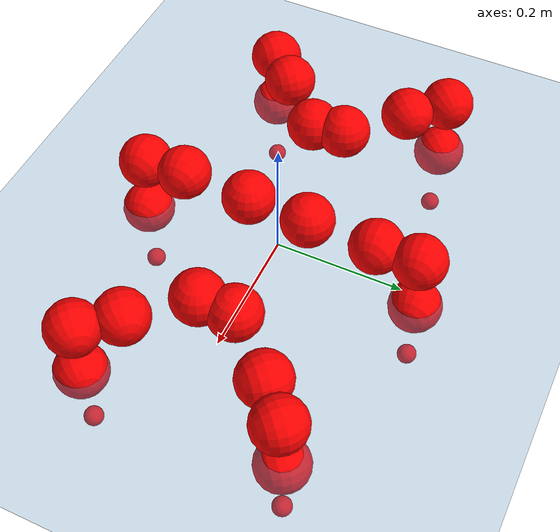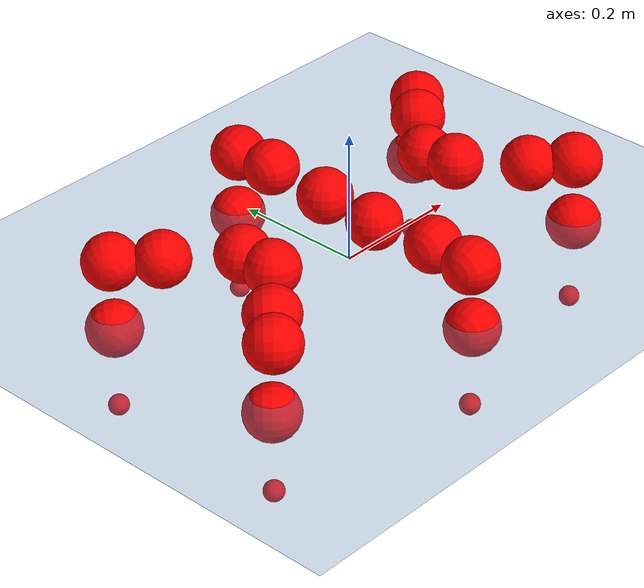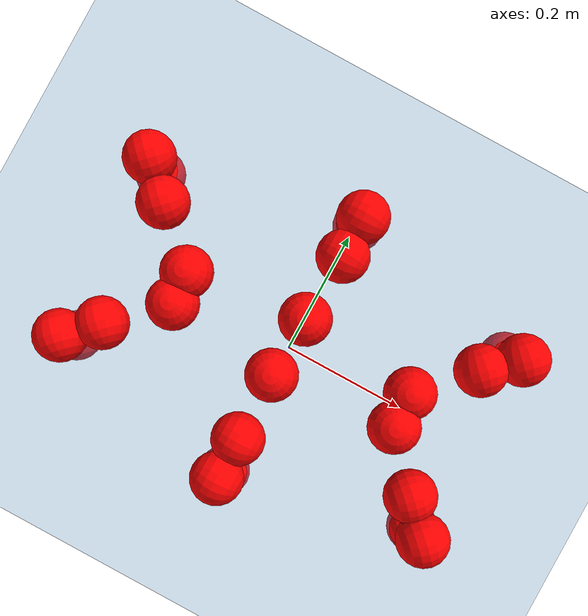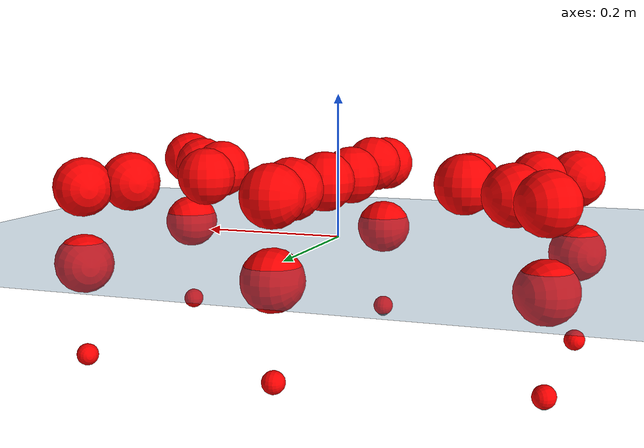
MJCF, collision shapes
<mujoco model="Golem">
  <compiler angle="radian" assetdir="assets" balanceinertia="true" inertiafromgeom="false"/>

  <option timestep="0.005" density="1.2" viscosity="2e-05"/>

  <size nkey="1"/>

  <visual>
    <quality shadowsize="8192"/>
    <map shadowclip="0.5"/>
  </visual>

  <default>
    <default class="/">
      <joint armature="0.01" damping="0.01" frictionloss="0.01"/>
      <geom contype="0" conaffinity="0" group="1" solref="-1000 -80"/>
      <site size="0.01 0.005 0.005" group="5"/>
      <general forcelimited="true" biastype="affine" gainprm="25" biasprm="0 -25 -0.5"/>
      <default class="visual">
        <geom type="mesh" group="2"/>
      </default>
      <default class="collision">
        <geom group="3"/>
      </default>
      <default class="foot">
        <geom size="0.01 0 0" condim="6" group="4" priority="1" solimp="0.015 1 0.01"/>
      </default>
      <default class="reward_collision_sphere">
        <geom group="5" rgba="1 0 0 1"/>
      </default>
    </default>
  </default>

  <asset>
    <texture type="skybox" colorspace="auto" name="//unnamed_texture_0" builtin="gradient" rgb1="0.95 0.95 0.95" rgb2="0.95 0.95 0.95" width="100" height="600"/>
    <texture type="2d" colorspace="auto" name="texplane" builtin="checker" rgb1="0.345 0.575 0.748" rgb2="0.345 0.575 0.748" markrgb="1 1 1" width="512" height="512"/>
    <material name="MatPlane" class="/" texture="texplane" texuniform="true" texrepeat="2 2" specular="0.9"/>
    <mesh name="body" class="/" file="body.stl" scale="0.001 0.001 0.001"/>
    <mesh name="coxa" class="/" file="coxa.stl" scale="0.001 0.001 0.001"/>
    <mesh name="femur" class="/" file="femur.stl" scale="0.001 0.001 0.001"/>
    <mesh name="tibia" class="/" file="tibia.stl" scale="0.001 0.001 0.001"/>
    <mesh name="tarsus" class="/" file="tarsus.stl" scale="0.001 0.001 0.001"/>
  </asset>

  <worldbody>
    <geom name="floor" class="/" size="100 100 0.125" type="plane" group="0" material="MatPlane"/>
    <light name="toplight_shadow" class="/" pos="0 0 5" dir="0.0990148 0.0990148 -0.990148" type="directional" ambient="0.04 0.04 0.04" diffuse="0.55 0.55 0.55" specular="0.12 0.12 0.12"/>
    <light name="toplight_fill" class="/" pos="0 0 5" dir="0.0990148 0.0990148 -0.990148" type="directional" castshadow="false" ambient="0.04 0.04 0.04" diffuse="0.3 0.3 0.3" specular="0.08 0.08 0.08"/>
    <body name="trunk" pos="0.00249023 -0.000413961 0.00369841" quat="1 -0.0004141 -0.000321953 2.13857e-05">
      <inertial pos="-3.71404e-05 -0.00195245 0.00173713" quat="0.999972 -0.00237531 -0.00576053 -0.004037" mass="3.92366" diaginertia="0.0243992 0.000969527 0.0287705"/>
      <joint name="//unnamed_joint_0" type="free"/>
      <geom name="//unnamed_geom_1" class="/" pos="0 0 0.0791872" quat="1 0 0 0" type="mesh" rgba="0.9 0.9 0.9 1" mesh="body"/>
      <site name="imu" class="/" pos="0.15045 0.00189706 0.111337" size="0.0102479"/>
      <camera name="track" class="/" pos="0 -1.2645 0" quat="0.707107 0.707107 0 0" mode="trackcom"/>
      <camera name="ego_camera" class="/" pos="0.156626 0 0.12373" quat="-0.5 -0.5 0.5 0.5"/>
      <body name="coxa_RR" pos="-0.210866 -0.0507639 0.0781714" quat="0.380672 -0.00100647 0.00119888 -0.924709">
        <inertial pos="0.00471946 0.000147092 0.00195532" quat="0.999914 -0.0120029 -0.00235142 0.00477491" mass="0.218067" diaginertia="0.0255984 0.00102976 0.0305975"/>
        <joint name="coxa_joint_RR" class="/" pos="0 0 0" axis="-0.0045197 -0.00486358 -0.999978" stiffness="0.000287586" range="-3.16039 3.18947" armature="0.00922268" damping="0" frictionloss="0.0088822"/>
        <geom name="//unnamed_geom_2" class="/" type="mesh" rgba="0.2 0.2 0.2 1" mesh="coxa"/>
        <geom name="//unnamed_geom_3" class="reward_collision_sphere" size="0.0409915" pos="-0.0361445 0 0"/>
        <body name="femur_RR" pos="0.0731604 -0.00154992 -0.00158595" quat="0.500187 -0.499919 0.499787 0.500107">
          <inertial pos="-0.00180106 -0.00158165 -0.00359386" quat="0.999999 -0.00115837 0.000676283 -0.000711115" mass="0.217919" diaginertia="0.0254679 0.00101905 0.0309576"/>
          <joint name="femur_joint_RR" class="/" pos="0 0 0" axis="-0.00876059 0.00997091 -0.999912" range="-3.09403 3.1524" armature="0.00980885" damping="0.019636" frictionloss="0.00913178"/>
          <geom name="//unnamed_geom_4" class="/" type="mesh" rgba="0.9 0.9 0.9 1" mesh="femur"/>
          <geom name="//unnamed_geom_5" class="reward_collision_sphere" size="0.0409915"/>
          <body name="tibia_RR" pos="0.00192659 -0.0663563 0.000230089" quat="2.02276e-05 1 3.46214e-05 -6.73696e-05">
            <inertial pos="-0.00124603 -0.00283328 0.00366913" quat="0.999901 0.0136291 -0.000310316 0.003457" mass="0.208507" diaginertia="0.0258702 0.00100382 0.0295975"/>
            <joint name="tibia_joint_RR" class="/" pos="0 0 0" axis="0.00210267 -0.00726954 0.999971" range="-3.1354 3.16047" armature="0.0100745" damping="0.013326" frictionloss="0.0114008"/>
            <geom name="//unnamed_geom_6" class="/" type="mesh" rgba="0.2 0.2 0.2 1" mesh="tibia"/>
            <geom name="//unnamed_geom_7" class="reward_collision_sphere" size="0.0409915"/>
            <body name="tarsus_RR" pos="0.106873 0.00326033 0.00307573" quat="0.999999 -0.000581261 0.00130981 0.000733012">
              <inertial pos="0.0745841 0.0045469 0.00168116" quat="0.500367 0.494767 0.510097 0.49461" mass="0.225509" diaginertia="0.0252164 0.00098679 0.0292176"/>
              <joint name="tarsus_joint_RR" class="/" pos="0 0 0" axis="0.00119486 0.00273794 0.999996" range="-3.14533 3.10017" armature="0.0099172" damping="0.0148359" frictionloss="0.00899408"/>
              <geom name="//unnamed_geom_8" class="/" type="mesh" rgba="0.9 0.9 0.9 1" mesh="tarsus"/>
              <geom name="foot_1" class="foot" size="0.00939083" pos="0.13494 0 0" quat="0 -0.707107 0 0.707107"/>
              <geom name="//unnamed_geom_10" class="reward_collision_sphere" size="0.0409915"/>
              <geom name="//unnamed_geom_11" class="reward_collision_sphere" size="0.0153718" pos="0.129518 0 0"/>
              <site name="foot_1" class="foot" pos="0.13494 0 0" quat="0 -0.707107 0 0.707107" size="0.0102479"/>
            </body>
          </body>
        </body>
      </body>
      <body name="coxa_RM" pos="-0.00459364 -0.0843785 0.0795125" quat="0.70637 -0.000133068 0.00035088 -0.707842">
        <inertial pos="-0.000528939 6.50693e-05 0.00546428" quat="0.999936 0.00177385 0.0103559 -0.00430884" mass="0.220331" diaginertia="0.0262739 0.00106381 0.0300982"/>
        <joint name="coxa_joint_RM" class="/" pos="0 0 0" axis="0.00630378 0.00256832 -0.999977" range="-3.1435 3.09158" armature="0.00974913" damping="0.0178537" frictionloss="0.0101469"/>
        <geom name="//unnamed_geom_12" class="/" type="mesh" rgba="0.2 0.2 0.2 1" mesh="coxa"/>
        <geom name="//unnamed_geom_13" class="reward_collision_sphere" size="0.0409915" pos="-0.0361445 0 0"/>
        <body name="femur_RM" pos="0.0702717 0.00196858 0.0063713" quat="0.498754 -0.501425 0.498659 0.501156">
          <inertial pos="-0.00248134 0.000136953 0.000498631" quat="0.999792 0.0184652 0.00861927 0.000922012" mass="0.221775" diaginertia="0.024469 0.000996652 0.0286746"/>
          <joint name="femur_joint_RM" class="/" pos="0 0 0" axis="0.00442397 -0.0093238 -0.999947" range="-3.094 3.0923" armature="0.00783314" damping="0" frictionloss="0.00976578"/>
          <geom name="//unnamed_geom_14" class="/" type="mesh" rgba="0.9 0.9 0.9 1" mesh="femur"/>
          <geom name="//unnamed_geom_15" class="reward_collision_sphere" size="0.0409915"/>
          <body name="tibia_RM" pos="0.00505184 -0.0668975 -0.000148783" quat="-0.000205227 1 9.81668e-05 0.000324841">
            <inertial pos="-0.00195464 0.00124406 0.00330615" quat="0.999946 -0.00243143 0.00627687 0.0078644" mass="0.230746" diaginertia="0.0267145 0.00104244 0.0286275"/>
            <joint name="tibia_joint_RM" class="/" pos="0 0 0" axis="-0.00473059 -0.0109389 0.999929" range="-3.09875 3.18705" armature="0.0113787" damping="0.00191518" frictionloss="0.00921925"/>
            <geom name="//unnamed_geom_16" class="/" type="mesh" rgba="0.2 0.2 0.2 1" mesh="tibia"/>
            <geom name="//unnamed_geom_17" class="reward_collision_sphere" size="0.0409915"/>
            <body name="tarsus_RM" pos="0.102183 0.00228273 -0.00446564" quat="1 -0.000270223 -0.000591741 0.000382648">
              <inertial pos="0.0707511 0.000740419 -0.001194" quat="0.496564 0.499726 0.498557 0.505114" mass="0.215254" diaginertia="0.0246198 0.00100723 0.0281262"/>
              <joint name="tarsus_joint_RM" class="/" pos="0 0 0" axis="0.00160288 -0.0105228 0.999943" stiffness="0.0202311" range="-3.10682 3.02507" armature="0.00999039" damping="0.0278536" frictionloss="0.00896419"/>
              <geom name="//unnamed_geom_18" class="/" type="mesh" rgba="0.9 0.9 0.9 1" mesh="tarsus"/>
              <geom name="foot_2" class="foot" size="0.0113776" pos="0.13494 0 0" quat="0 -0.707107 0 0.707107"/>
              <geom name="//unnamed_geom_20" class="reward_collision_sphere" size="0.0409915"/>
              <geom name="//unnamed_geom_21" class="reward_collision_sphere" size="0.0153718" pos="0.129518 0 0"/>
              <site name="foot_2" class="foot" pos="0.13494 0 0" quat="0 -0.707107 0 0.707107" size="0.0102479"/>
            </body>
          </body>
        </body>
      </body>
      <body name="coxa_RF" pos="0.217638 -0.0539102 0.0837361" quat="0.924463 -4.09248e-05 0.000463709 -0.38127">
        <inertial pos="-0.00342651 0.00310295 -0.00253272" quat="0.999922 -0.0109899 0.00583165 0.00142557" mass="0.206627" diaginertia="0.0242811 0.000977362 0.0291701"/>
        <joint name="coxa_joint_RF" class="/" pos="0 0 0" axis="0.00818167 -0.0119957 -0.999895" range="-3.13653 3.08704" armature="0.010385" damping="0.00822625" frictionloss="0.00939711"/>
        <geom name="//unnamed_geom_22" class="/" type="mesh" rgba="0.2 0.2 0.2 1" mesh="coxa"/>
        <geom name="//unnamed_geom_23" class="reward_collision_sphere" size="0.0409915" pos="-0.0361445 0 0"/>
        <body name="femur_RF" pos="0.0693277 -0.00588133 -0.00269777" quat="0.497488 -0.500877 0.50083 0.500797">
          <inertial pos="0.00221113 -0.00214648 -0.00129449" quat="0.999999 -0.000948147 -0.000896079 0.000541483" mass="0.212652" diaginertia="0.0248949 0.0010233 0.0280508"/>
          <joint name="femur_joint_RF" class="/" pos="0 0 0" axis="-0.0104967 -0.0035655 -0.999939" stiffness="0.00851706" range="-3.12233 3.14723" armature="0.00902763" damping="0.0158802" frictionloss="0.00990694"/>
          <geom name="//unnamed_geom_24" class="/" type="mesh" rgba="0.9 0.9 0.9 1" mesh="femur"/>
          <geom name="//unnamed_geom_25" class="reward_collision_sphere" size="0.0409915"/>
          <body name="tibia_RF" pos="-0.00412705 -0.0665924 -0.00148222" quat="-0.00030587 0.999999 -0.000549204 -0.00103762">
            <inertial pos="-0.00211421 0.00186666 -0.000540595" quat="0.999972 0.0001753 0.00381428 -0.00637794" mass="0.23328" diaginertia="0.0273496 0.00106591 0.0295408"/>
            <joint name="tibia_joint_RF" class="/" pos="0 0 0" axis="-0.00288391 -0.00108796 0.999995" stiffness="0.0229303" range="-3.1107 3.1837" armature="0.0105195" damping="0.0413524" frictionloss="0.0103648"/>
            <geom name="//unnamed_geom_26" class="/" type="mesh" rgba="0.2 0.2 0.2 1" mesh="tibia"/>
            <geom name="//unnamed_geom_27" class="reward_collision_sphere" size="0.0409915"/>
            <body name="tarsus_RF" pos="0.103652 0.00322152 0.000252392" quat="1 -7.69607e-05 -9.23396e-05 -0.000409413">
              <inertial pos="0.0739091 0.00118148 0.00227132" quat="0.501144 0.500718 0.498531 0.499603" mass="0.211943" diaginertia="0.0262963 0.000985207 0.0297782"/>
              <joint name="tarsus_joint_RF" class="/" pos="0 0 0" axis="0.00285928 -0.0146665 0.999888" range="-3.14371 3.08779" armature="0.0114812" damping="0" frictionloss="0.0090547"/>
              <geom name="//unnamed_geom_28" class="/" type="mesh" rgba="0.9 0.9 0.9 1" mesh="tarsus"/>
              <geom name="foot_3" class="foot" size="0.00998374" pos="0.13494 0 0" quat="0 -0.707107 0 0.707107"/>
              <geom name="//unnamed_geom_30" class="reward_collision_sphere" size="0.0409915"/>
              <geom name="//unnamed_geom_31" class="reward_collision_sphere" size="0.0153718" pos="0.129518 0 0"/>
              <site name="foot_3" class="foot" pos="0.13494 0 0" quat="0 -0.707107 0 0.707107" size="0.0102479"/>
            </body>
          </body>
        </body>
      </body>
      <body name="coxa_LR" pos="-0.214623 0.0512482 0.0813251" quat="0.382692 0.000263348 -8.53424e-05 0.923876">
        <inertial pos="0.000840143 -0.00202351 0.00145358" quat="0.999989 -0.00341191 0.00231497 -0.00234139" mass="0.223393" diaginertia="0.0268451 0.00104538 0.0298371"/>
        <joint name="coxa_joint_LR" class="/" pos="0 0 0" axis="0.0097998 0.00354866 -0.999946" range="-3.13033 3.09094" armature="0.0111729" damping="0.00343107" frictionloss="0.00944042"/>
        <geom name="//unnamed_geom_32" class="/" type="mesh" rgba="0.2 0.2 0.2 1" mesh="coxa"/>
        <geom name="//unnamed_geom_33" class="reward_collision_sphere" size="0.0409915" pos="-0.0361445 0 0"/>
        <body name="femur_LR" pos="0.0737338 0.00457308 -0.00220775" quat="0.500112 -0.500169 0.500103 0.499616">
          <inertial pos="-0.00153757 -0.00119558 0.00474534" quat="0.999993 0.00234197 -0.0028229 -0.00039832" mass="0.225862" diaginertia="0.0263788 0.00105688 0.0301902"/>
          <joint name="femur_joint_LR" class="/" pos="0 0 0" axis="-0.0233129 -0.00832555 0.999694" stiffness="0.00685347" range="-3.15955 3.13299" armature="0.0101975" damping="0" frictionloss="0.00907856"/>
          <geom name="//unnamed_geom_34" class="/" type="mesh" rgba="0.9 0.9 0.9 1" mesh="femur"/>
          <geom name="//unnamed_geom_35" class="reward_collision_sphere" size="0.0409915"/>
          <body name="tibia_LR" pos="0.00181094 -0.0706225 0.000758798" quat="0.000131311 1 -0.000494398 0.000636472">
            <inertial pos="-0.00197711 -0.00282121 -0.00115356" quat="0.999922 -0.00771231 -0.00671447 -0.00721731" mass="0.216165" diaginertia="0.0265808 0.00101777 0.0281824"/>
            <joint name="tibia_joint_LR" class="/" pos="0 0 0" axis="0.00554552 0.0279986 -0.999593" range="-3.18101 3.25467" armature="0.00761713" damping="0.0386472" frictionloss="0.00991275"/>
            <geom name="//unnamed_geom_36" class="/" type="mesh" rgba="0.2 0.2 0.2 1" mesh="tibia"/>
            <geom name="//unnamed_geom_37" class="reward_collision_sphere" size="0.0409915"/>
            <body name="tarsus_LR" pos="0.107574 -0.000547652 -0.00184662" quat="0.999999 0.000469809 0.00108416 0.000271361">
              <inertial pos="0.0675274 -0.00217415 0.00586035" quat="0.498818 0.500037 0.499864 0.501278" mass="0.218187" diaginertia="0.0250051 0.000972479 0.0296894"/>
              <joint name="tarsus_joint_LR" class="/" pos="0 0 0" axis="-0.00155521 0.00175463 -0.999997" range="-3.14066 3.13185" armature="0.0109198" damping="0" frictionloss="0.0104593"/>
              <geom name="//unnamed_geom_38" class="/" type="mesh" rgba="0.9 0.9 0.9 1" mesh="tarsus"/>
              <geom name="foot_4" class="foot" size="0.0106888" pos="0.13494 0 0" quat="0.707107 0 -0.707107 0"/>
              <geom name="//unnamed_geom_40" class="reward_collision_sphere" size="0.0409915"/>
              <geom name="//unnamed_geom_41" class="reward_collision_sphere" size="0.0153718" pos="0.129518 0 0"/>
              <site name="foot_4" class="foot" pos="0.13494 0 0" quat="0.707107 0 -0.707107 0" size="0.0102479"/>
            </body>
          </body>
        </body>
      </body>
      <body name="coxa_LM" pos="-0.000340889 0.0850432 0.0804618" quat="0.70753 0.00117252 7.76705e-05 0.706682">
        <inertial pos="0.000594714 0.00341713 -0.00518578" quat="0.999987 0.0011979 -0.00463135 -0.00154787" mass="0.208603" diaginertia="0.0239972 0.000979723 0.0284262"/>
        <joint name="coxa_joint_LM" class="/" pos="0 0 0" axis="0.00956496 0.00578258 -0.999938" range="-3.16566 3.10008" armature="0.0126561" damping="0.00466292" frictionloss="0.0103904"/>
        <geom name="//unnamed_geom_42" class="/" type="mesh" rgba="0.2 0.2 0.2 1" mesh="coxa"/>
        <geom name="//unnamed_geom_43" class="reward_collision_sphere" size="0.0409915" pos="-0.0361445 0 0"/>
        <body name="femur_LM" pos="0.072646 -0.00404347 0.00157436" quat="0.499998 -0.500019 0.500007 0.499976">
          <inertial pos="0.0046489 6.77422e-06 0.000259831" quat="0.99998 -0.00166135 0.00586853 0.00188667" mass="0.229445" diaginertia="0.0258576 0.00106344 0.0313045"/>
          <joint name="femur_joint_LM" class="/" pos="0 0 0" axis="-0.0154738 -0.0094251 0.999836" range="-3.15024 3.14836" armature="0.00909153" damping="0.00378392" frictionloss="0.00935106"/>
          <geom name="//unnamed_geom_44" class="/" type="mesh" rgba="0.9 0.9 0.9 1" mesh="femur"/>
          <geom name="//unnamed_geom_45" class="reward_collision_sphere" size="0.0409915"/>
          <body name="tibia_LM" pos="0.00120529 -0.0654776 0.00131233" quat="0.000636062 0.999999 -0.00026112 -0.000942528">
            <inertial pos="0.00276364 0.000359988 -0.00116167" quat="0.999961 -0.00734252 0.00339898 -0.00356413" mass="0.220936" diaginertia="0.0254414 0.000975747 0.0290669"/>
            <joint name="tibia_joint_LM" class="/" pos="0 0 0" axis="0.00832617 0.0109983 -0.999905" range="-3.09676 3.07892" armature="0.0118003" damping="0.00400983" frictionloss="0.0109294"/>
            <geom name="//unnamed_geom_46" class="/" type="mesh" rgba="0.2 0.2 0.2 1" mesh="tibia"/>
            <geom name="//unnamed_geom_47" class="reward_collision_sphere" size="0.0409915"/>
            <body name="tarsus_LM" pos="0.104163 0.00308717 -0.00119753" quat="1 5.00068e-05 9.1063e-05 0.000129273">
              <inertial pos="0.068242 -0.00185937 -0.00201933" quat="0.500361 0.499536 0.500006 0.500097" mass="0.216764" diaginertia="0.0248576 0.000992483 0.0280963"/>
              <joint name="tarsus_joint_LM" class="/" pos="0 0 0" axis="-0.00118952 0.00209135 -0.999997" stiffness="0.0144139" range="-3.16634 3.12464" armature="0.0101987" damping="0.0279155" frictionloss="0.00902638"/>
              <geom name="//unnamed_geom_48" class="/" type="mesh" rgba="0.9 0.9 0.9 1" mesh="tarsus"/>
              <geom name="foot_5" class="foot" size="0.0100333" pos="0.13494 0 0" quat="0.707107 0 -0.707107 0"/>
              <geom name="//unnamed_geom_50" class="reward_collision_sphere" size="0.0409915"/>
              <geom name="//unnamed_geom_51" class="reward_collision_sphere" size="0.0153718" pos="0.129518 0 0"/>
              <site name="foot_5" class="foot" pos="0.13494 0 0" quat="0.707107 0 -0.707107 0" size="0.0102479"/>
            </body>
          </body>
        </body>
      </body>
      <body name="coxa_LF" pos="0.215383 0.0523688 0.0778607" quat="0.923733 0.00103406 0.00102312 0.383034">
        <inertial pos="-0.00148496 -0.0012554 0.00214171" quat="0.999819 -0.0175186 0.00103027 -0.00730622" mass="0.216557" diaginertia="0.0235091 0.00103673 0.0289971"/>
        <joint name="coxa_joint_LF" class="/" pos="0 0 0" axis="0.00785285 0.00123227 -0.999968" range="-3.0926 3.19869" armature="0.00994165" damping="0.00405199" frictionloss="0.00942415"/>
        <geom name="//unnamed_geom_52" class="/" type="mesh" rgba="0.2 0.2 0.2 1" mesh="coxa"/>
        <geom name="//unnamed_geom_53" class="reward_collision_sphere" size="0.0409915" pos="-0.0361445 0 0"/>
        <body name="femur_LF" pos="0.0752889 0.00301176 -0.00166854" quat="0.500415 -0.499722 0.499488 0.500374">
          <inertial pos="0.00221927 -0.0010856 7.79353e-05" quat="0.999968 0.00249706 -0.00447643 0.00609218" mass="0.208856" diaginertia="0.02603 0.0010273 0.0291004"/>
          <joint name="femur_joint_LF" class="/" pos="0 0 0" axis="0.0157937 0.00853982 0.999839" stiffness="0.00963244" range="-3.07526 3.16602" armature="0.0104411" damping="0.0149466" frictionloss="0.0101237"/>
          <geom name="//unnamed_geom_54" class="/" type="mesh" rgba="0.9 0.9 0.9 1" mesh="femur"/>
          <geom name="//unnamed_geom_55" class="reward_collision_sphere" size="0.0409915"/>
          <body name="tibia_LF" pos="0.00467973 -0.0662523 -0.00338927" quat="1.68584e-05 1 -0.000471243 -0.000234728">
            <inertial pos="0.00205545 -0.000568966 -0.00205941" quat="0.999602 0.0206742 0.0102137 -0.0162787" mass="0.204554" diaginertia="0.0256852 0.00104211 0.0283881"/>
            <joint name="tibia_joint_LF" class="/" pos="0 0 0" axis="-0.00470461 0.0111236 -0.999927" stiffness="0.0211639" range="-3.13504 3.16438" armature="0.0104784" damping="0.0242637" frictionloss="0.00898657"/>
            <geom name="//unnamed_geom_56" class="/" type="mesh" rgba="0.2 0.2 0.2 1" mesh="tibia"/>
            <geom name="//unnamed_geom_57" class="reward_collision_sphere" size="0.0409915"/>
            <body name="tarsus_LF" pos="0.105655 0.00214844 -0.00374249" quat="1 -0.000734326 -0.000436566 -0.000517993">
              <inertial pos="0.0721397 -0.00282307 0.000138844" quat="0.506101 0.498999 0.504503 0.490243" mass="0.234899" diaginertia="0.0267977 0.00106145 0.0300742"/>
              <joint name="tarsus_joint_LF" class="/" pos="0 0 0" axis="-0.0092169 0.00258052 -0.999954" stiffness="0.00679729" range="-3.18768 3.1539" armature="0.00974542" damping="0" frictionloss="0.01053"/>
              <geom name="//unnamed_geom_58" class="/" type="mesh" rgba="0.9 0.9 0.9 1" mesh="tarsus"/>
              <geom name="foot_6" class="foot" size="0.00996558" pos="0.13494 0 0" quat="0.707107 0 -0.707107 0"/>
              <geom name="//unnamed_geom_60" class="reward_collision_sphere" size="0.0409915"/>
              <geom name="//unnamed_geom_61" class="reward_collision_sphere" size="0.0153718" pos="0.129518 0 0"/>
              <site name="foot_6" class="foot" pos="0.13494 0 0" quat="0.707107 0 -0.707107 0" size="0.0102479"/>
            </body>
          </body>
        </body>
      </body>
    </body>
  </worldbody>

  <contact>
    <pair class="/" geom1="floor" geom2="foot_1" name="//unnamed_contact_0"/>
    <pair class="/" geom1="floor" geom2="foot_2" name="//unnamed_contact_1"/>
    <pair class="/" geom1="floor" geom2="foot_3" name="//unnamed_contact_2"/>
    <pair class="/" geom1="floor" geom2="foot_4" name="//unnamed_contact_3"/>
    <pair class="/" geom1="floor" geom2="foot_5" name="//unnamed_contact_4"/>
    <pair class="/" geom1="floor" geom2="foot_6" name="//unnamed_contact_5"/>
  </contact>

  <actuator>
    <general name="coxa_joint_RR" class="/" joint="coxa_joint_RR" forcerange="-7.06813 7.06813" gainprm="24.9878" biasprm="0 -24.9878 -0.475482"/>
    <general name="femur_joint_RR" class="/" joint="femur_joint_RR" forcerange="-7.42486 7.42486" gainprm="24.9878" biasprm="0 -24.9878 -0.475482"/>
    <general name="tibia_joint_RR" class="/" joint="tibia_joint_RR" forcerange="-8.24264 8.24264" gainprm="24.9878" biasprm="0 -24.9878 -0.475482"/>
    <general name="tarsus_joint_RR" class="/" joint="tarsus_joint_RR" forcerange="-7.95644 7.95644" gainprm="24.9878" biasprm="0 -24.9878 -0.475482"/>
    <general name="coxa_joint_RM" class="/" joint="coxa_joint_RM" forcerange="-5.86641 5.86641" gainprm="24.9878" biasprm="0 -24.9878 -0.475482"/>
    <general name="femur_joint_RM" class="/" joint="femur_joint_RM" forcerange="-7.14554 7.14554" gainprm="24.9878" biasprm="0 -24.9878 -0.475482"/>
    <general name="tibia_joint_RM" class="/" joint="tibia_joint_RM" forcerange="-7.91796 7.91796" gainprm="24.9878" biasprm="0 -24.9878 -0.475482"/>
    <general name="tarsus_joint_RM" class="/" joint="tarsus_joint_RM" forcerange="-8.25894 8.25894" gainprm="24.9878" biasprm="0 -24.9878 -0.475482"/>
    <general name="coxa_joint_RF" class="/" joint="coxa_joint_RF" forcerange="-6.89076 6.89076" gainprm="24.9878" biasprm="0 -24.9878 -0.475482"/>
    <general name="femur_joint_RF" class="/" joint="femur_joint_RF" forcerange="-7.58802 7.58802" gainprm="24.9878" biasprm="0 -24.9878 -0.475482"/>
    <general name="tibia_joint_RF" class="/" joint="tibia_joint_RF" forcerange="-7.45557 7.45557" gainprm="24.9878" biasprm="0 -24.9878 -0.475482"/>
    <general name="tarsus_joint_RF" class="/" joint="tarsus_joint_RF" forcerange="-7.4161 7.4161" gainprm="24.9878" biasprm="0 -24.9878 -0.475482"/>
    <general name="coxa_joint_LR" class="/" joint="coxa_joint_LR" forcerange="-6.45251 6.45251" gainprm="24.9878" biasprm="0 -24.9878 -0.475482"/>
    <general name="femur_joint_LR" class="/" joint="femur_joint_LR" forcerange="-7.51137 7.51137" gainprm="24.9878" biasprm="0 -24.9878 -0.475482"/>
    <general name="tibia_joint_LR" class="/" joint="tibia_joint_LR" forcerange="-7.13004 7.13004" gainprm="24.9878" biasprm="0 -24.9878 -0.475482"/>
    <general name="tarsus_joint_LR" class="/" joint="tarsus_joint_LR" forcerange="-6.28476 6.28476" gainprm="24.9878" biasprm="0 -24.9878 -0.475482"/>
    <general name="coxa_joint_LM" class="/" joint="coxa_joint_LM" forcerange="-8.18132 8.18132" gainprm="24.9878" biasprm="0 -24.9878 -0.475482"/>
    <general name="femur_joint_LM" class="/" joint="femur_joint_LM" forcerange="-8.09591 8.09591" gainprm="24.9878" biasprm="0 -24.9878 -0.475482"/>
    <general name="tibia_joint_LM" class="/" joint="tibia_joint_LM" forcerange="-6.55458 6.55458" gainprm="24.9878" biasprm="0 -24.9878 -0.475482"/>
    <general name="tarsus_joint_LM" class="/" joint="tarsus_joint_LM" forcerange="-5.96042 5.96042" gainprm="24.9878" biasprm="0 -24.9878 -0.475482"/>
    <general name="coxa_joint_LF" class="/" joint="coxa_joint_LF" forcerange="-7.77846 7.77846" gainprm="24.9878" biasprm="0 -24.9878 -0.475482"/>
    <general name="femur_joint_LF" class="/" joint="femur_joint_LF" forcerange="-7.71272 7.71272" gainprm="24.9878" biasprm="0 -24.9878 -0.475482"/>
    <general name="tibia_joint_LF" class="/" joint="tibia_joint_LF" forcerange="-6.88665 6.88665" gainprm="24.9878" biasprm="0 -24.9878 -0.475482"/>
    <general name="tarsus_joint_LF" class="/" joint="tarsus_joint_LF" forcerange="-7.17342 7.17342" gainprm="24.9878" biasprm="0 -24.9878 -0.475482"/>
  </actuator>

  <sensor>
    <gyro site="imu" name="imu_angular_velocity"/>
    <velocimeter site="imu" name="imu_linear_velocity"/>
    <framelinvel objtype="site" objname="foot_1" name="foot_1_global_linear_velocity"/>
    <framelinvel objtype="site" objname="foot_2" name="foot_2_global_linear_velocity"/>
    <framelinvel objtype="site" objname="foot_3" name="foot_3_global_linear_velocity"/>
    <framelinvel objtype="site" objname="foot_4" name="foot_4_global_linear_velocity"/>
    <framelinvel objtype="site" objname="foot_5" name="foot_5_global_linear_velocity"/>
    <framelinvel objtype="site" objname="foot_6" name="foot_6_global_linear_velocity"/>
  </sensor>

  <keyframe>
    <key name="home" qpos="0 0 0.1457 1 0 0 0 0 0 0 0 0 0 0 0 0 0 0 0 0 0 0 0 0 0 0 0 0 0 0 0"/>
  </keyframe>
</mujoco>
